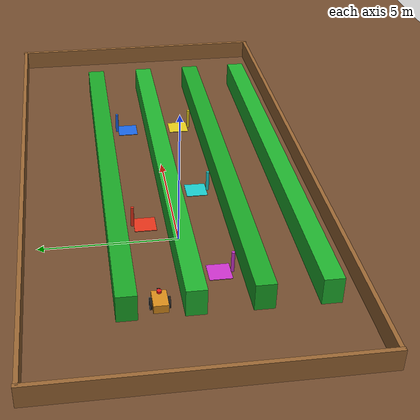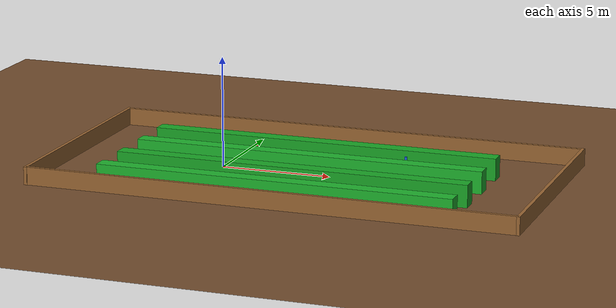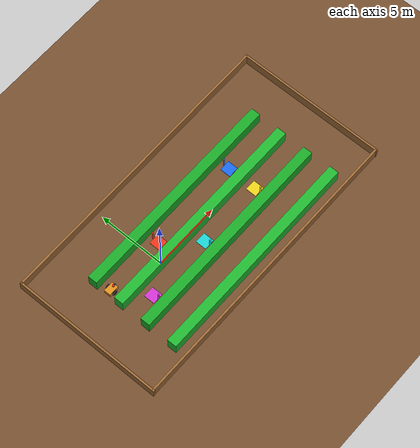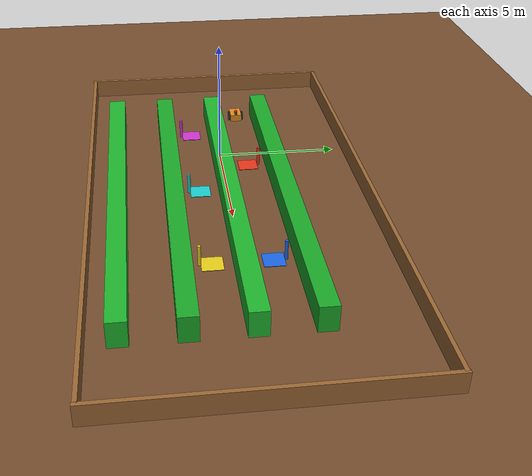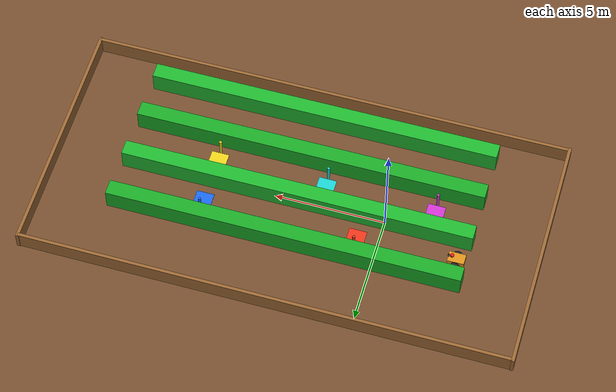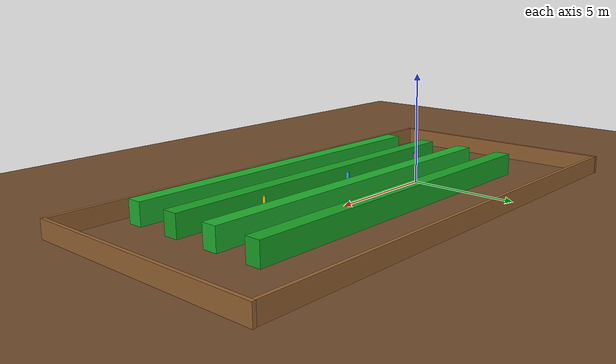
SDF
<?xml version="1.0" ?>
<sdf version="1.9">
  <world name="problem5_agricultural_world">
    <physics name="1ms" type="ignored">
      <max_step_size>0.001</max_step_size>
      <real_time_factor>1.0</real_time_factor>
    </physics>
    <plugin filename="gz-sim-physics-system" name="gz::sim::systems::Physics"/>
    <plugin filename="gz-sim-user-commands-system" name="gz::sim::systems::UserCommands"/>
    <plugin filename="gz-sim-scene-broadcaster-system" name="gz::sim::systems::SceneBroadcaster"/>
    <plugin filename="gz-sim-sensors-system" name="gz::sim::systems::Sensors">
      <render_engine>ogre</render_engine>
    </plugin>

    <scene>
      <ambient>0.95 0.95 0.95 1</ambient>
      <background>0.82 0.90 0.96 1</background>
      <shadows>false</shadows>
    </scene>
    <light type="directional" name="sun">
      <diffuse>1 1 1 1</diffuse>
      <specular>0.3 0.3 0.3 1</specular>
      <direction>-0.4 0.4 -1</direction>
    </light>

    <!-- Brown Soil Farm Field Ground Plane -->
    <model name="ground_plane">
      <static>true</static>
      <link name="link">
        <collision name="c"><geometry><plane><normal>0 0 1</normal><size>50 50</size></plane></geometry></collision>
        <visual name="v">
          <geometry><plane><normal>0 0 1</normal><size>50 50</size></plane></geometry>
          <material><ambient>0.45 0.30 0.18 1</ambient><diffuse>0.45 0.30 0.18 1</diffuse></material>
        </visual>
      </link>
    </model>

    <!-- Boundary Fence Walls -->
    <model name="fence_n"><static>true</static><pose>4.0 5.5 0.4 0 0 0</pose><link name="l"><visual name="v"><geometry><box><size>22.0 0.15 0.8</size></box></geometry><material><ambient>0.6 0.4 0.2 1</ambient><diffuse>0.6 0.4 0.2 1</diffuse></material></visual><collision name="c"><geometry><box><size>22.0 0.15 0.8</size></box></geometry></collision></link></model>
    <model name="fence_s"><static>true</static><pose>4.0 -5.5 0.4 0 0 0</pose><link name="l"><visual name="v"><geometry><box><size>22.0 0.15 0.8</size></box></geometry><material><ambient>0.6 0.4 0.2 1</ambient><diffuse>0.6 0.4 0.2 1</diffuse></material></visual><collision name="c"><geometry><box><size>22.0 0.15 0.8</size></box></geometry></collision></link></model>
    <model name="fence_e"><static>true</static><pose>15.0 0.0 0.4 0 0 0</pose><link name="l"><visual name="v"><geometry><box><size>0.15 11.2 0.8</size></box></geometry><material><ambient>0.6 0.4 0.2 1</ambient><diffuse>0.6 0.4 0.2 1</diffuse></material></visual><collision name="c"><geometry><box><size>0.15 11.2 0.8</size></box></geometry></collision></link></model>
    <model name="fence_w"><static>true</static><pose>-7.0 0.0 0.4 0 0 0</pose><link name="l"><visual name="v"><geometry><box><size>0.15 11.2 0.8</size></box></geometry><material><ambient>0.6 0.4 0.2 1</ambient><diffuse>0.6 0.4 0.2 1</diffuse></material></visual><collision name="c"><geometry><box><size>0.15 11.2 0.8</size></box></geometry></collision></link></model>

    <!-- Parallel Crop Rows (Dense Green Foliage Hedges) -->
    <!-- Crop Row 1 (North hedge at y = +2.2) -->
    <model name="crop_row_1">
      <static>true</static><pose>4.0 2.2 0.5 0 0 0</pose>
      <link name="l">
        <visual name="v"><geometry><box><size>16.0 0.7 1.0</size></box></geometry>
          <material><ambient>0.1 0.65 0.15 1</ambient><diffuse>0.1 0.65 0.15 1</diffuse></material>
        </visual>
        <collision name="c"><geometry><box><size>16.0 0.7 1.0</size></box></geometry></collision>
      </link>
    </model>

    <!-- Crop Row 2 (Center hedge at y = 0.0) -->
    <model name="crop_row_2">
      <static>true</static><pose>4.0 0.0 0.5 0 0 0</pose>
      <link name="l">
        <visual name="v"><geometry><box><size>16.0 0.7 1.0</size></box></geometry>
          <material><ambient>0.12 0.70 0.18 1</ambient><diffuse>0.12 0.70 0.18 1</diffuse></material>
        </visual>
        <collision name="c"><geometry><box><size>16.0 0.7 1.0</size></box></geometry></collision>
      </link>
    </model>

    <!-- Crop Row 3 (South hedge at y = -2.2) -->
    <model name="crop_row_3">
      <static>true</static><pose>4.0 -2.2 0.5 0 0 0</pose>
      <link name="l">
        <visual name="v"><geometry><box><size>16.0 0.7 1.0</size></box></geometry>
          <material><ambient>0.1 0.65 0.15 1</ambient><diffuse>0.1 0.65 0.15 1</diffuse></material>
        </visual>
        <collision name="c"><geometry><box><size>16.0 0.7 1.0</size></box></geometry></collision>
      </link>
    </model>

    <!-- Crop Row 4 (Far South hedge at y = -4.4) -->
    <model name="crop_row_4">
      <static>true</static><pose>4.0 -4.4 0.5 0 0 0</pose>
      <link name="l">
        <visual name="v"><geometry><box><size>16.0 0.7 1.0</size></box></geometry>
          <material><ambient>0.12 0.70 0.18 1</ambient><diffuse>0.12 0.70 0.18 1</diffuse></material>
        </visual>
        <collision name="c"><geometry><box><size>16.0 0.7 1.0</size></box></geometry></collision>
      </link>
    </model>

    <!-- Designated Monitoring Inspection Points (Markers) -->
    <!-- Monitoring Point 1: Row 1 West -->
    <model name="monitor_point_1">
      <static>true</static><pose>1.0 1.1 0.01 0 0 0</pose>
      <link name="l">
        <visual name="pad"><geometry><box><size>0.8 0.8 0.02</size></box></geometry><material><ambient>0.9 0.2 0.1 1</ambient><diffuse>0.9 0.2 0.1 1</diffuse></material></visual>
        <visual name="pole"><pose>0 0.45 0.4 0 0 0</pose><geometry><cylinder><radius>0.06</radius><length>0.8</length></cylinder></geometry><material><ambient>0.9 0.2 0.1 1</ambient><diffuse>0.9 0.2 0.1 1</diffuse></material></visual>
      </link>
    </model>

    <!-- Monitoring Point 2: Row 1 East -->
    <model name="monitor_point_2">
      <static>true</static><pose>8.0 1.1 0.01 0 0 0</pose>
      <link name="l">
        <visual name="pad"><geometry><box><size>0.8 0.8 0.02</size></box></geometry><material><ambient>0.1 0.4 0.9 1</ambient><diffuse>0.1 0.4 0.9 1</diffuse></material></visual>
        <visual name="pole"><pose>0 0.45 0.4 0 0 0</pose><geometry><cylinder><radius>0.06</radius><length>0.8</length></cylinder></geometry><material><ambient>0.1 0.4 0.9 1</ambient><diffuse>0.1 0.4 0.9 1</diffuse></material></visual>
      </link>
    </model>

    <!-- Monitoring Point 3: Row 2 East -->
    <model name="monitor_point_3">
      <static>true</static><pose>8.0 -1.1 0.01 0 0 0</pose>
      <link name="l">
        <visual name="pad"><geometry><box><size>0.8 0.8 0.02</size></box></geometry><material><ambient>0.9 0.8 0.1 1</ambient><diffuse>0.9 0.8 0.1 1</diffuse></material></visual>
        <visual name="pole"><pose>0 -0.45 0.4 0 0 0</pose><geometry><cylinder><radius>0.06</radius><length>0.8</length></cylinder></geometry><material><ambient>0.9 0.8 0.1 1</ambient><diffuse>0.9 0.8 0.1 1</diffuse></material></visual>
      </link>
    </model>

    <!-- Monitoring Point 4: Row 2 Mid -->
    <model name="monitor_point_4">
      <static>true</static><pose>3.0 -1.1 0.01 0 0 0</pose>
      <link name="l">
        <visual name="pad"><geometry><box><size>0.8 0.8 0.02</size></box></geometry><material><ambient>0.1 0.8 0.8 1</ambient><diffuse>0.1 0.8 0.8 1</diffuse></material></visual>
        <visual name="pole"><pose>0 -0.45 0.4 0 0 0</pose><geometry><cylinder><radius>0.06</radius><length>0.8</length></cylinder></geometry><material><ambient>0.1 0.8 0.8 1</ambient><diffuse>0.1 0.8 0.8 1</diffuse></material></visual>
      </link>
    </model>

    <!-- Monitoring Point 5: Row 2 West -->
    <model name="monitor_point_5">
      <static>true</static><pose>-2.0 -1.1 0.01 0 0 0</pose>
      <link name="l">
        <visual name="pad"><geometry><box><size>0.8 0.8 0.02</size></box></geometry><material><ambient>0.8 0.2 0.8 1</ambient><diffuse>0.8 0.2 0.8 1</diffuse></material></visual>
        <visual name="pole"><pose>0 -0.45 0.4 0 0 0</pose><geometry><cylinder><radius>0.06</radius><length>0.8</length></cylinder></geometry><material><ambient>0.8 0.2 0.8 1</ambient><diffuse>0.8 0.2 0.8 1</diffuse></material></visual>
      </link>
    </model>

    <!-- Agricultural Mobile Robot (High-Clearance Chassis + LiDAR + Camera) -->
    <model name="agribot">
      <pose>-3.5 1.1 0.25 0 0 0</pose>
      <link name="chassis">
        <inertial><mass>2.0</mass><inertia><ixx>0.06</ixx><iyy>0.12</iyy><izz>0.15</izz></inertia></inertial>
        <collision name="c"><geometry><box><size>0.75 0.5 0.3</size></box></geometry></collision>
        <visual name="v"><geometry><box><size>0.75 0.5 0.3</size></box></geometry>
          <material><ambient>0.85 0.55 0.1 1</ambient><diffuse>0.85 0.55 0.1 1</diffuse></material>
        </visual>
      </link>

      <link name="left_wheel">
        <pose>0 0.30 -0.05 0 0 0</pose><inertial><mass>0.3</mass><inertia><ixx>0.003</ixx><iyy>0.003</iyy><izz>0.003</izz></inertia></inertial>
        <collision name="c"><pose>0 0 0 1.5708 0 0</pose><geometry><cylinder><radius>0.20</radius><length>0.08</length></cylinder></geometry><surface><friction><ode><mu>10</mu><mu2>10</mu2></ode></friction></surface></collision>
        <visual name="v"><pose>0 0 0 1.5708 0 0</pose><geometry><cylinder><radius>0.20</radius><length>0.08</length></cylinder></geometry><material><ambient>0.1 0.1 0.1 1</ambient></material></visual>
      </link>
      <link name="right_wheel">
        <pose>0 -0.30 -0.05 0 0 0</pose><inertial><mass>0.3</mass><inertia><ixx>0.003</ixx><iyy>0.003</iyy><izz>0.003</izz></inertia></inertial>
        <collision name="c"><pose>0 0 0 1.5708 0 0</pose><geometry><cylinder><radius>0.20</radius><length>0.08</length></cylinder></geometry><surface><friction><ode><mu>10</mu><mu2>10</mu2></ode></friction></surface></collision>
        <visual name="v"><pose>0 0 0 1.5708 0 0</pose><geometry><cylinder><radius>0.20</radius><length>0.08</length></cylinder></geometry><material><ambient>0.1 0.1 0.1 1</ambient></material></visual>
      </link>
      <link name="caster_f">
        <pose>0.26 0 -0.12 0 0 0</pose><inertial><mass>0.05</mass><inertia><ixx>0.0001</ixx><iyy>0.0001</iyy><izz>0.0001</izz></inertia></inertial>
        <collision name="c"><geometry><sphere><radius>0.08</radius></sphere></geometry><surface><friction><ode><mu>0.01</mu><mu2>0.01</mu2></ode></friction></surface></collision>
        <visual name="v"><geometry><sphere><radius>0.08</radius></sphere></geometry><material><ambient>0.2 0.2 0.2 1</ambient></material></visual>
      </link>
      <link name="caster_r">
        <pose>-0.26 0 -0.12 0 0 0</pose><inertial><mass>0.05</mass><inertia><ixx>0.0001</ixx><iyy>0.0001</iyy><izz>0.0001</izz></inertia></inertial>
        <collision name="c"><geometry><sphere><radius>0.08</radius></sphere></geometry><surface><friction><ode><mu>0.01</mu><mu2>0.01</mu2></ode></friction></surface></collision>
        <visual name="v"><geometry><sphere><radius>0.08</radius></sphere></geometry><material><ambient>0.2 0.2 0.2 1</ambient></material></visual>
      </link>

      <!-- Distance Sensor / LiDAR -->
      <link name="lidar_link">
        <pose>0.2 0 0.25 0 0 0</pose><inertial><mass>0.08</mass><inertia><ixx>0.0001</ixx><iyy>0.0001</iyy><izz>0.0001</izz></inertia></inertial>
        <visual name="v"><geometry><cylinder><radius>0.08</radius><length>0.08</length></cylinder></geometry><material><ambient>0.9 0.1 0.1 1</ambient></material></visual>
        <sensor name="lidar" type="gpu_lidar">
          <always_on>true</always_on><visualize>true</visualize><update_rate>10</update_rate>
          <topic>/agribot/scan</topic>
          <lidar>
            <scan><horizontal><samples>180</samples><resolution>1</resolution><min_angle>-2.35</min_angle><max_angle>2.35</max_angle></horizontal></scan>
            <range><min>0.2</min><max>12.0</max><resolution>0.02</resolution></range>
          </lidar>
        </sensor>
      </link>

      <!-- Crop Inspection Camera -->
      <link name="cam_link">
        <pose>0.35 0 0.20 0 0.3 0</pose><inertial><mass>0.05</mass><inertia><ixx>0.0001</ixx><iyy>0.0001</iyy><izz>0.0001</izz></inertia></inertial>
        <visual name="v"><geometry><box><size>0.08 0.1 0.06</size></box></geometry><material><ambient>0.1 0.1 0.1 1</ambient></material></visual>
        <sensor name="crop_cam" type="camera">
          <always_on>true</always_on><update_rate>10</update_rate><visualize>true</visualize>
          <topic>/agribot/camera/image_raw</topic>
          <camera>
            <horizontal_fov>1.4</horizontal_fov>
            <image><width>640</width><height>480</height><format>R8G8B8</format></image>
            <clip><near>0.05</near><far>30.0</far></clip>
          </camera>
        </sensor>
      </link>

      <joint name="lwj" type="revolute"><parent>chassis</parent><child>left_wheel</child><axis><xyz>0 1 0</xyz></axis></joint>
      <joint name="rwj" type="revolute"><parent>chassis</parent><child>right_wheel</child><axis><xyz>0 1 0</xyz></axis></joint>
      <joint name="cfj" type="fixed"><parent>chassis</parent><child>caster_f</child></joint>
      <joint name="crj" type="fixed"><parent>chassis</parent><child>caster_r</child></joint>
      <joint name="lj" type="fixed"><parent>chassis</parent><child>lidar_link</child></joint>
      <joint name="cj" type="fixed"><parent>chassis</parent><child>cam_link</child></joint>

      <plugin filename="gz-sim-diff-drive-system" name="gz::sim::systems::DiffDrive">
        <left_joint>lwj</left_joint><right_joint>rwj</right_joint>
        <wheel_separation>0.60</wheel_separation><wheel_radius>0.20</wheel_radius>
        <odom_topic>/agribot/odometry</odom_topic><topic>/agribot/cmd_vel</topic>
      </plugin>
    </model>
  </world>
</sdf>
